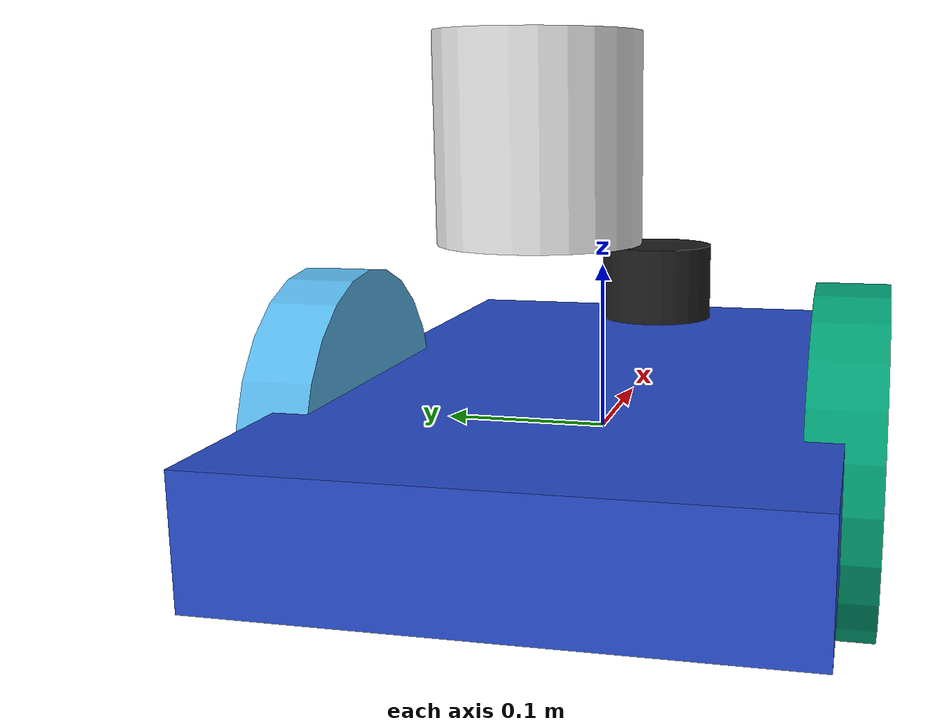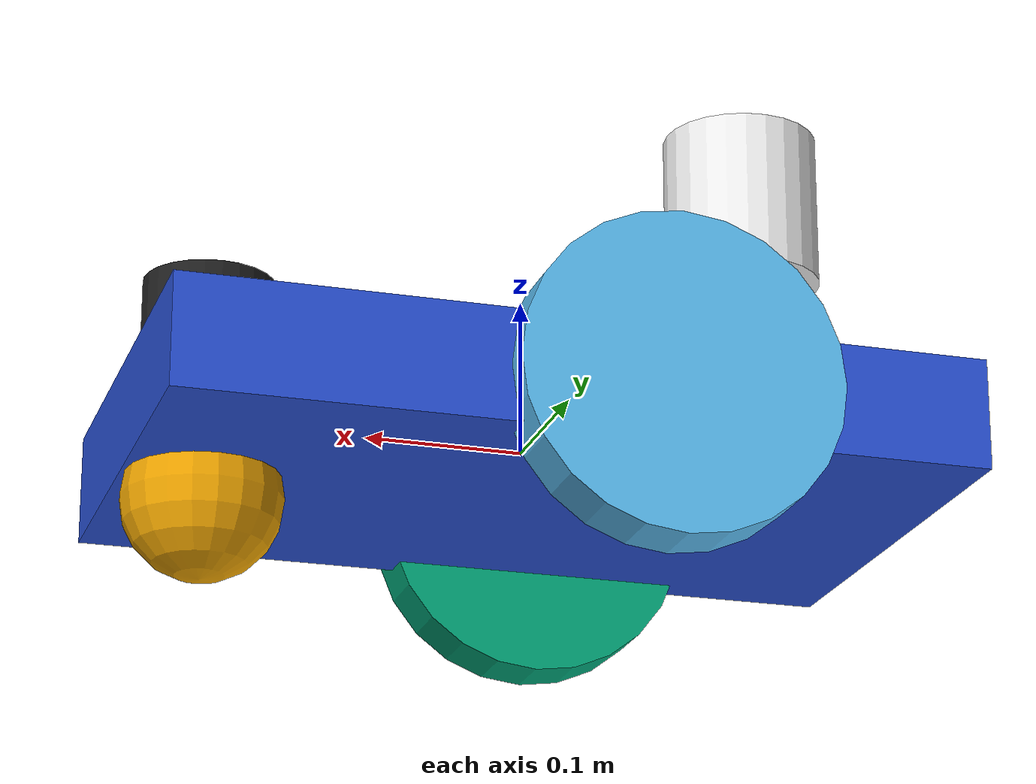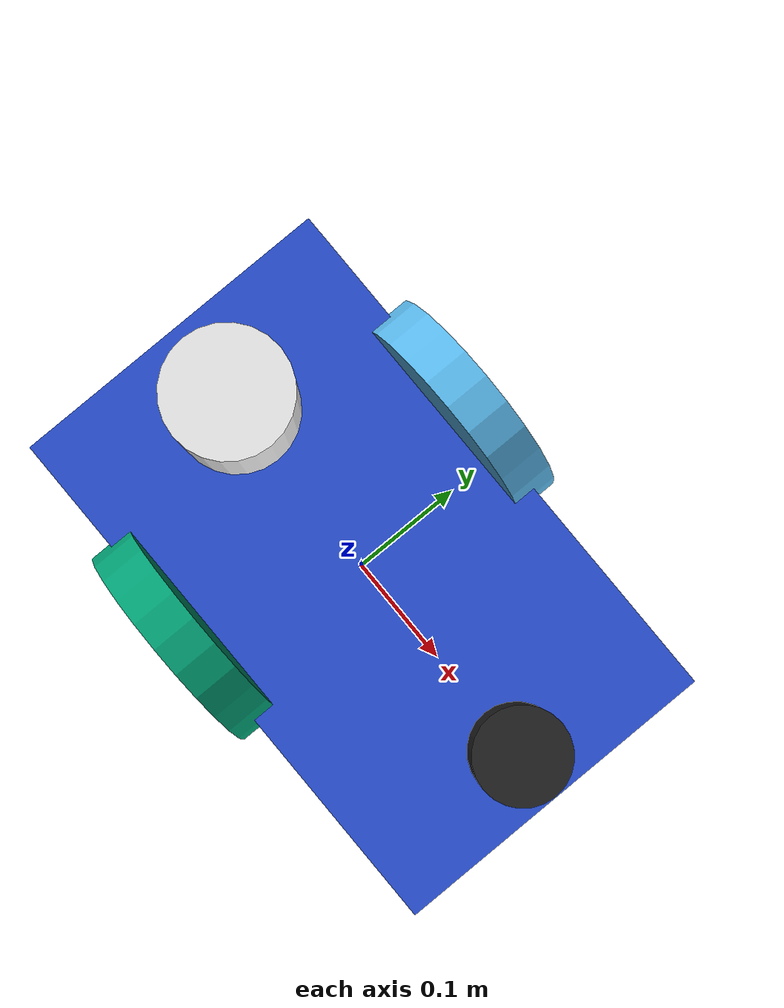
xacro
<?xml version="1.0" ?>

<robot name="4wbot" xmlns:xacro="https://www.ros.org/wiki/xacro" >

  <!--xacro:include filename="$(find 4wbot_description)/urdf/macro.xacro" /-->

  <!-- Defining link chassis -->
  <link name="base_link">
    <!-- pose and inertial -->
    <pose>0 0 0.1 0 0 0</pose>

    <!-- Inertial properties -->
    <inertial>
      <mass value="5"/>
      <origin rpy="0 0 0" xyz="0 0 0.1"/>
      <inertia ixx="0.0395416666667" ixy="0" ixz="0" iyy="0.106208333333" iyz="0" izz="0.106208333333"/>
    </inertial>
    <!-- Collision properties -->
    <collision name="collision_chassis">
      <geometry>
        <box size="0.5 0.3 0.07"/>
      </geometry>
    </collision>
    <!-- Visual properties -->
    <visual>
      <origin rpy="0 0 0" xyz="0 0 0"/>
      <geometry>
        <box size="0.5 0.3 0.07"/>
      </geometry>
      <material name="blue"/>
    </visual>

    <!-- caster front -->
    <collision name="caster_front_collision">
      <origin rpy=" 0 0 0" xyz="0.35 0 -0.05"/>
      <geometry>
        <sphere radius="0.05"/>
      </geometry>
      <surface>
        <friction>
          <ode>
            <mu>0</mu>
            <mu2>0</mu2>
            <slip1>1.0</slip1>
            <slip2>1.0</slip2>
          </ode>
        </friction>
      </surface>
    </collision>
    <visual name="caster_front_visual">
      <origin rpy=" 0 0 0" xyz="0.2 0 -0.05"/>
      <geometry>
        <sphere radius="0.05"/>
      </geometry>
    </visual>
    </link>

  <!-- Create wheel right -->

  <link name="link_right_wheel">
    <inertial>
      <mass value="0.2"/>
      <origin rpy="0 1.5707 1.5707" xyz="0 0 0"/>
      <inertia ixx="0.00052666666" ixy="0" ixz="0" iyy="0.00052666666" iyz="0" izz="0.001"/>
    </inertial>

    <collision name="link_right_wheel_collision">
      <origin rpy="0 1.5707 1.5707" xyz="0 0 0" />
      <geometry>
        <cylinder length="0.04" radius="0.1"/>
      </geometry>
    </collision>

    <visual name="link_right_wheel_visual">
      <origin rpy="0 1.5707 1.5707" xyz="0 0 0"/>
      <geometry>
        <cylinder length="0.04" radius="0.1"/>
      </geometry>
    </visual>

  </link>

  <!--   Joint for right wheel  -->
  <joint name="joint_right_wheel" type="continuous">
    <origin rpy="0 0 0" xyz="-0.05 0.15 0"/>
    <child link="link_right_wheel" />
    <parent link="base_link"/>
    <axis rpy="0 0 0" xyz="0 1 0"/>
    <limit effort="10000" velocity="1000"/>
    <joint_properties damping="1.0" friction="1.0" />
  </joint>

  <!-- Left Wheel link -->

  <link name="link_left_wheel">
    <inertial>
      <mass value="0.2"/>
      <origin rpy="0 1.5707 1.5707" xyz="0 0 0"/>
      <inertia ixx="0.00052666666" ixy="0" ixz="0" iyy="0.00052666666" iyz="0" izz="0.001"/>
    </inertial>

    <collision name="link_left_wheel_collision">
      <origin rpy="0 1.5707 1.5707" xyz="0 0 0" />
      <geometry>
        <cylinder length="0.04" radius="0.1"/>
      </geometry>
    </collision>

    <visual name="link_left_wheel_visual">
      <origin rpy="0 1.5707 1.5707" xyz="0 0 0"/>
      <geometry>
        <cylinder length="0.04" radius="0.1"/>
      </geometry>
    </visual>

  </link>

  <!--   Joint for right wheel  -->
  <joint name="joint_left_wheel" type="continuous">
    <origin rpy="0 0 0" xyz="-0.05 -0.15 0"/>
    <child link="link_left_wheel" />
    <parent link="base_link"/>
    <axis rpy="0 0 0" xyz="0 1 0"/>
    <limit effort="10000" velocity="1000"/>
    <joint_properties damping="1.0" friction="1.0" />
  </joint>

  <!--
    Adding a laser scan sensor to the robot
  -->
  <link name="sensor_laser">
    <inertial>
      <origin xyz="0 0 0" rpy="0 0 0" />
      <mass value="1" />

      <inertia ixx="0.02" ixy="0" ixz="0" iyy="0.02" iyz="0" izz="0.02"/>

    </inertial>

    <visual>
      <origin xyz="0 0 0" rpy="0 0 0" />
      <geometry>
        <cylinder radius="0.05" length="0.1"/>
      </geometry>
      <material name="white" />
    </visual>

    <collision>
      <origin xyz="0 0 0" rpy="0 0 0"/>
      <geometry>
        <cylinder radius="0.05" length="0.1"/>
      </geometry>
    </collision>
  </link>

  <joint name="joint_sensor_laser" type="fixed">
    <origin xyz="-0.15 0 0.18" rpy="0 0 0"/>
    <parent link="base_link"/>
    <child link="sensor_laser"/>
  </joint>

  <link name="t265_link">
    <inertial>
      <origin xyz="0 0 0" rpy="0 0 0" />
      <mass value="1" />

      <inertia ixx="0.02" ixy="0" ixz="0" iyy="0.02" iyz="0" izz="0.02"/>

    </inertial>

    <visual>
      <origin xyz="0 0 0" rpy="0 0 0" />
      <geometry>
        <cylinder radius="0.041" length="0.08"/>
      </geometry>
      <material name="black" />
    </visual>

    <collision>
      <origin xyz="0 0 0" rpy="0 0 0"/>
      <geometry>
        <cylinder radius="0.041" length="0.08"/>
      </geometry>
    </collision>
  </link>

  <joint name="joint_t265_link" type="fixed">
    <origin xyz="0.2 0 0.05" rpy="0 0 0"/>
    <parent link="base_link"/>
    <child link="t265_link"/>
  </joint>
</robot>
